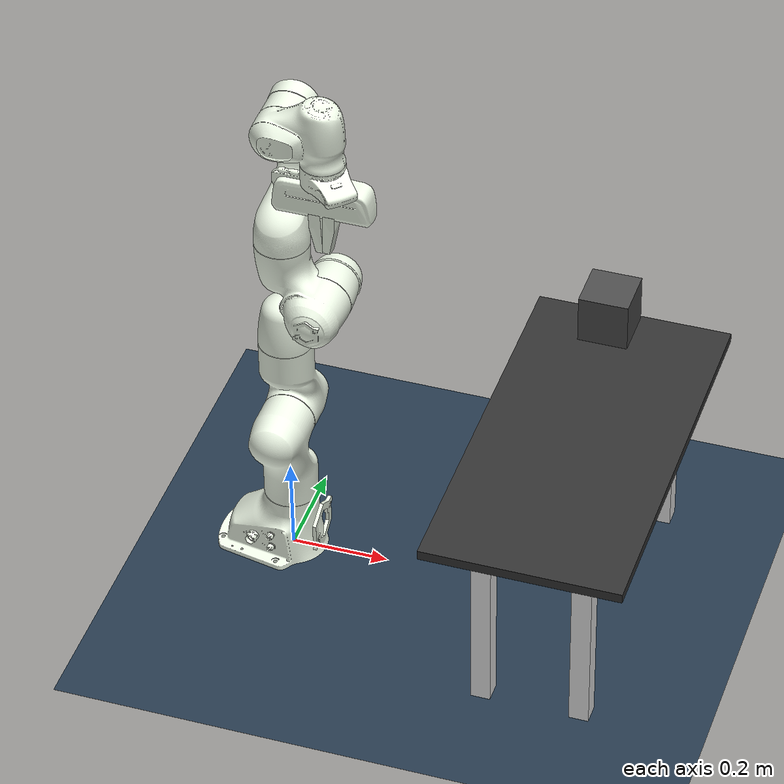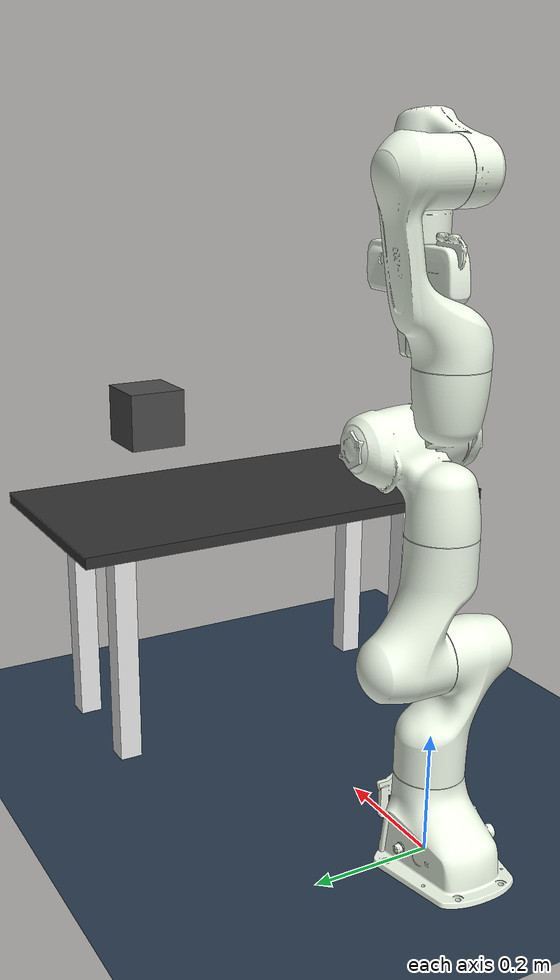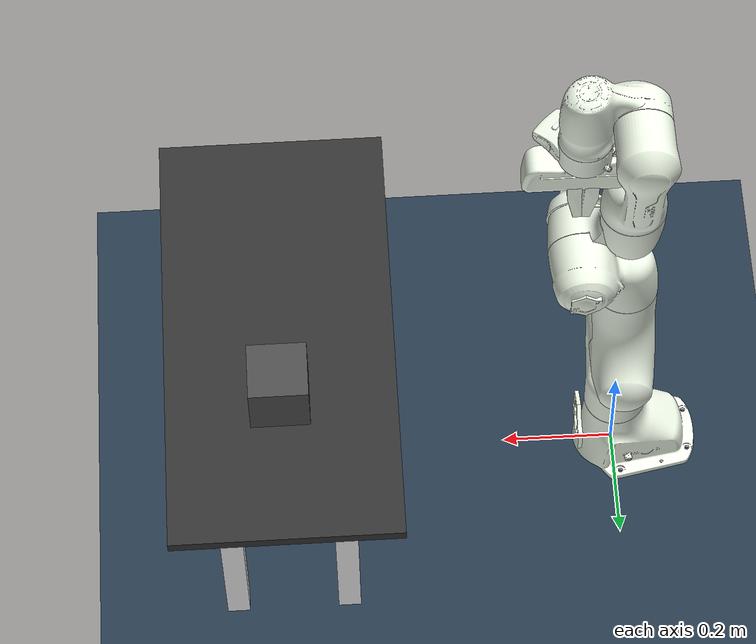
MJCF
<?xml version="1.0" ?>
<mujoco model="franka_panda">
    <compiler angle="radian" meshdir="" />
    <include file="assets.xml" />

    <worldbody>
        <light pos="0 0 1000" castshadow="false"/>
        <geom name="ground" pos="0 0 0" size="5 5 10" material="MatGnd" type="plane" contype="1" conaffinity="1"/>

        <body name="panda_link0" childclass="panda" >
            <inertial pos="0 0 0" quat="1 0 0 0" mass="3.06" diaginertia="0.3 0.3 0.3" />
            <geom class="visual" mesh="link0_visual"/>

            <body name="panda_link1" pos="0 0 0.333">
                <inertial pos="3.875e-03 2.081e-03 -0.1750" quat="1 0 0 0" mass="4.970684" fullinertia="7.0337e-01 7.0661e-01 9.1170e-03 -1.3900e-04 6.7720e-03 1.9169e-02" />
                <joint name="panda_joint1" range="-2.8973 2.8973" frictionloss="5"/>
                <geom class="visual" mesh="link1_visual"/>
                <geom class="collision" mesh="link1_collision"/>

                <body name="panda_link2" pos="0 0 0" quat="0.707107 -0.707107 0 0">
                    <inertial pos="-3.141e-03 -2.872e-02 3.495e-03" quat="1 0 0 0" mass="0.646926" fullinertia="7.9620e-03 2.8110e-02 2.5995e-02 -3.9250e-03 1.0254e-02 7.0400e-04" />
                    <joint name="panda_joint2" range="-1.7628 1.7628" frictionloss="2"/>
                    <geom class="visual" mesh="link2_visual"/>
                    <geom class="collision" mesh="link2_collision"/>

                    <body name="panda_link3" pos="0 -0.316 0" quat="0.707107 0.707107 0 0">
                        <inertial pos="2.7518e-02 3.9252e-02 -6.6502e-02" quat="1 0 0 0" mass="3.228604" fullinertia="3.7242e-02 3.6155e-02 1.0830e-02 -4.7610e-03 -1.1396e-02 -1.2805e-02" />
                        <joint name="panda_joint3" range="-2.8973 2.8973" frictionloss="2"/>
                        <geom class="visual" mesh="link3_visual"/>
                        <geom class="collision" mesh="link3_collision"/>

                        <body name="panda_link4" pos="0.0825 0 0" quat="0.707107 0.707107 0 0">
                            <inertial pos="-5.317e-02 1.04419e-01 2.7454e-02" quat="1 0 0 0" mass="3.587895" fullinertia="2.5853e-02 1.9552e-02 2.8323e-02 7.7960e-03 -1.3320e-03 8.6410e-03" />
                            <joint name="panda_joint4" range="-3.0718 -0.4" frictionloss="0.5"/>
                            <geom class="visual" mesh="link4_visual"/>
                            <geom class="collision" mesh="link4_collision"/>

                            <body name="panda_link5" pos="-0.0825 0.384 0" quat="0.707107 -0.707107 0 0">
                                <inertial pos="-1.1953e-02 4.1065e-02 -3.8437e-02" quat="1 0 0 0" mass="1.225946" fullinertia="3.5549e-02 2.9474e-02 8.6270e-03 -2.1170e-03 -4.0370e-03 2.2900e-04" />
                                <joint name="panda_joint5" range="-2.8973 2.8973" frictionloss="1"/>
                                <geom class="visual" mesh="link5_visual"/>
                                <geom class="collision" mesh="link5_collision"/>

                                <body name="panda_link6" pos="0 0 0" quat="0.707107 0.707107 0 0">
                                    <inertial pos="6.0149e-02 -1.4117e-02 -1.0517e-02" quat="1 0 0 0" mass="1.666555" fullinertia="1.9640e-03 4.3540e-03 5.4330e-03 1.0900e-04 -1.1580e-03 3.4100e-04" />
                                    <joint name="panda_joint6" range="-1.6573 2.1127" frictionloss="0.5"/>
                                    <geom class="visual" mesh="link6_visual"/>
                                    <geom class="collision" mesh="link6_collision"/>

                                    <body name="panda_link7" pos="0.088 0 0" euler='1.57 0 0.'>
                                        <inertial pos="1.0517e-02 -4.252e-03 6.1597e-02" quat="1 0 0 0" mass="7.35522e-01" fullinertia="1.2516e-02 1.0027e-02 4.8150e-03 -4.2800e-04 -1.1960e-03 -7.4100e-04" />
                                        <joint name="panda_joint7" range="-2.8973 2.8973" frictionloss="0.5"/>
                                        <geom class="visual" mesh="link7_visual"/>
                                        <geom class="collision" mesh="link7_collision"/>

                                        <site name='ee_site' pos='0 0 0.107' size="0.005, 0.005, 0.005" euler='0 0 -1.57'/>
                                        <include file="gripper.xml"/>
                                    </body>
                                </body>
                            </body>
                        </body>
                    </body>
                </body>
            </body>
        </body>
        <include file="objects.xml" />
    </worldbody>

</mujoco>

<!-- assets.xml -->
<mujoco>
    <asset>
        <material name="floorplane" reflectance="0.5" texrepeat="1 1" texture="texplane" texuniform="true"/>
        <material name="floor_mat" specular="0" shininess="0.5" reflectance="0" rgba="0.2 0.2 0.2 1"/>
        <material name="table_mat" specular="0" shininess="0.5" reflectance="0" rgba="0.93 0.93 0.93 1"/>
        <material name="block_mat" specular="0" shininess="0.5" reflectance="0" rgba="0.3 0.3 0.3 1"/>
    </asset>
    <asset>
        <mesh name="link0_collision" file="meshes/collision/link0.stl"/>
        <mesh name="link1_collision" file="meshes/collision/link1.stl"/>
        <mesh name="link2_collision" file="meshes/collision/link2.stl"/>
        <mesh name="link3_collision" file="meshes/collision/link3.stl"/>
        <mesh name="link4_collision" file="meshes/collision/link4.stl"/>
        <mesh name="link5_collision" file="meshes/collision/link5.stl"/>
        <mesh name="link6_collision" file="meshes/collision/link6.stl"/>
        <mesh name="link7_collision" file="meshes/collision/link7.stl"/>
        <mesh name="hand_collision" file="meshes/collision/hand.stl"/>
        <mesh name="finger_collision" file="meshes/collision/finger.stl" scale='1.75 1.0 1.75'/>
        <mesh name="link0_visual" file="meshes/visual/link0.stl"/>
        <mesh name="link1_visual" file="meshes/visual/link1.stl"/>
        <mesh name="link2_visual" file="meshes/visual/link2.stl"/>
        <mesh name="link3_visual" file="meshes/visual/link3.stl"/>
        <mesh name="link4_visual" file="meshes/visual/link4.stl"/>
        <mesh name="link5_visual" file="meshes/visual/link5.stl"/>
        <mesh name="link6_visual" file="meshes/visual/link6.stl"/>
        <mesh name="link7_visual" file="meshes/visual/link7.stl"/>
        <mesh name="hand_visual" file="meshes/visual/hand.stl"/>
        <mesh name="finger_visual" file="meshes/collision/finger.stl" scale='1.75 1.0 1.75'/>
    </asset>

    <default>
        <default class="panda">

            <joint pos="0 0 0" axis="0 0 1" limited="true" damping="100"/>
            <position forcelimited="true" ctrllimited="true" user="1002 40 2001 -0.005 0.005"/>
            <default class="visual">
                <geom contype="0" conaffinity="0" group="0" type="mesh" rgba=".95 .99 .92 1" mass="0"/>
            </default>

            <default class="collision">
                <geom contype="1" conaffinity="1" group="3" type="mesh" rgba=".5 .6 .7 1"/>
            </default>
             <default class="panda_finger">
                <joint damping="100" armature='5'/>
            </default>
        </default>
    </default>

    <asset>
        <texture name="texplane" type="2d" builtin="checker" rgb1=".2 .3 .4" rgb2=".1 0.15 0.2"
                width="512" height="512"/>
        <material name="MatGnd" reflectance="0.5" texture="texplane" texrepeat="1 1" texuniform="true"/>
    </asset>
    <equality>
        <!-- When you want to fix the table to world, please uncomment under lines -->
        <weld body1="table_leg0" body2="table" relpose="0 1 0 0 0 0 0" />
        <weld body1="table_leg1" body2="table" relpose="0 1 0 0 0 0 0" />
        <weld body1="table_leg2" body2="table" relpose="0 1 0 0 0 0 0" />
        <weld body1="table_leg3" body2="table" relpose="0 1 0 0 0 0 0" />
    </equality>
</mujoco>

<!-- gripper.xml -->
<mujoco>
<body name="panda_hand" pos="0 0 0.107" euler="0 0 -1.5707"> <!--euler="0 0 -0.785"-->
    <inertial pos="0 0 0" euler="0 0 0" mass="0.68" diaginertia="0.1 0.1 0.1" />
    <geom class="visual" mesh="hand_visual"/>
    <geom class="collision" mesh="hand_collision"/>

    <body name="panda_leftfinger" pos="0 0 0.0584" quat="1 0 0 0">
        <joint name="panda_finger_joint1"  axis="0 1 0" type="slide" range="0 0.04" damping="100" armature='5'/>
        <geom class="visual" mesh="finger_visual"/>
        <geom class="collision" mesh="finger_collision" mass="0.01"/>
    </body>

    <body name="panda_rightfinger" pos="0 0 0.0584" quat="1 0 0 0">
        <joint name="panda_finger_joint2" axis="0 -1 0" type="slide" range="0 0.04" damping="100" armature='5'/>
        <geom quat="0 0 0 1" class="visual" mesh="finger_visual"/>
        <geom quat="0 0 0 1" class="collision" mesh="finger_collision" mass="0.01"/>
    </body>
</body>
</mujoco>

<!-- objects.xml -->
<mujoco>
    <body pos=".6 .2 .6" name="object0">
        <freejoint/>
        <geom type="box" size="0.05 0.05 0.05" density="100" friction="0.95 0.3 0.1" material="block_mat" />
    </body>
    <body pos=".7 .3 .2" name="table_leg0">
        <freejoint/>
        <geom type="box" size=".02 .02 .2" material="table_mat"/>
    </body>
    <body pos=".7 -.3 .2" name="table_leg1">
        <freejoint/>
        <geom type="box" size=".02 .02 .2" material="table_mat"/>
    </body>
    <body pos=".5 .3 .2" name="table_leg2">
        <freejoint/>
        <geom type="box" size=".02 .02 .2" material="table_mat"/>
    </body>
    <body pos=".5 -.3 .2" name="table_leg3">
        <freejoint/>
        <geom type="box" size=".02 .02 .2" material="table_mat"/>
    </body>
    <body pos=".6 0 .42" name="table">
        <freejoint/>
        <geom type="box" size=".2 .4 .01" material="floor_mat" />
    </body>
</mujoco>
